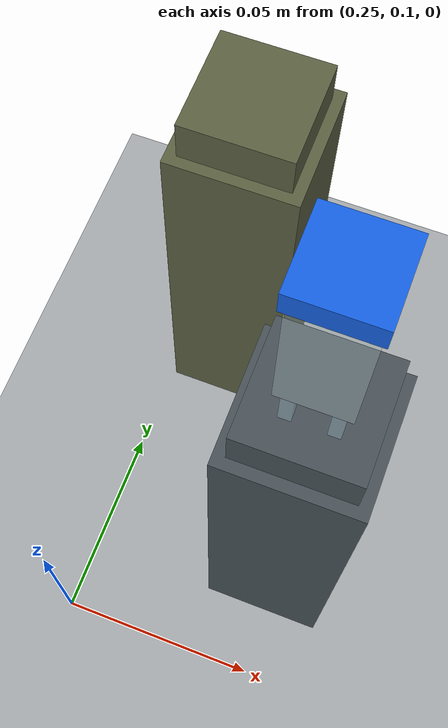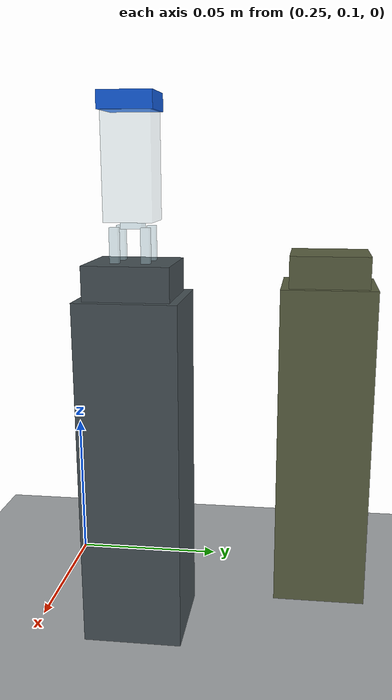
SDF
<?xml version="1.0"?>
<sdf version="1.9">
  <world name="atom_grasp">
    <gravity>0 0 -9.81</gravity>
    <physics name="1ms" type="ignored">
      <max_step_size>0.001</max_step_size>
      <real_time_factor>1.0</real_time_factor>
    </physics>
    <plugin filename="gz-sim-physics-system" name="gz::sim::systems::Physics"/>
    <plugin filename="gz-sim-user-commands-system" name="gz::sim::systems::UserCommands"/>
    <plugin filename="gz-sim-scene-broadcaster-system" name="gz::sim::systems::SceneBroadcaster"/>
    <plugin filename="gz-sim-contact-system" name="gz::sim::systems::Contact"/>

    <light type="directional" name="sun">
      <cast_shadows>true</cast_shadows>
      <pose>0 0 10 0 0 0</pose>
      <diffuse>0.8 0.8 0.8 1</diffuse>
      <specular>0.2 0.2 0.2 1</specular>
      <direction>-0.5 0.1 -0.9</direction>
    </light>

    <model name="ground_plane">
      <static>true</static>
      <link name="link">
        <collision name="collision">
          <geometry><plane><normal>0 0 1</normal><size>4 4</size></plane></geometry>
        </collision>
        <visual name="visual">
          <geometry><plane><normal>0 0 1</normal><size>4 4</size></plane></geometry>
          <material><ambient>0.55 0.57 0.58 1</ambient><diffuse>0.65 0.67 0.68 1</diffuse></material>
        </visual>
      </link>
    </model>

    <!-- A scenario fixture, not a model of either laboratory instrument. -->
    <model name="cuvette_support">
      <static>true</static>
      <pose>0.2982 0.13235 0 0 0 0</pose>
      <link name="support">
        <collision name="pedestal_collision">
          <pose>0 0 0.0525 0 0 0</pose>
          <geometry><box><size>0.030 0.030 0.105</size></box></geometry>
          <surface><friction><ode><mu>0.4</mu><mu2>0.4</mu2></ode></friction></surface>
        </collision>
        <collision name="tray_collision">
          <pose>0 0 0.110 0 0 0</pose>
          <geometry><box><size>0.025 0.025 0.010</size></box></geometry>
          <surface><friction><ode><mu>0.4</mu><mu2>0.4</mu2></ode></friction></surface>
        </collision>
        <visual name="pedestal_visual">
          <pose>0 0 0.0525 0 0 0</pose>
          <geometry><box><size>0.030 0.030 0.105</size></box></geometry>
          <material><ambient>0.18 0.22 0.24 1</ambient><diffuse>0.28 0.32 0.34 1</diffuse></material>
        </visual>
        <visual name="tray_visual">
          <pose>0 0 0.110 0 0 0</pose>
          <geometry><box><size>0.025 0.025 0.010</size></box></geometry>
          <material><ambient>0.18 0.22 0.24 1</ambient><diffuse>0.28 0.32 0.34 1</diffuse></material>
        </visual>
      </link>
    </model>

    <!-- Target fixture for the 0.2 rad shoulder-pan transfer test. -->
    <model name="cuvette_target_support">
      <static>true</static>
      <pose>0.2660 0.1890 0 0 0 0</pose>
      <link name="support">
        <collision name="pedestal_collision">
          <pose>0 0 0.0525 0 0 0</pose>
          <geometry><box><size>0.030 0.030 0.105</size></box></geometry>
        </collision>
        <collision name="tray_collision">
          <pose>0 0 0.110 0 0 0</pose>
          <geometry><box><size>0.025 0.025 0.010</size></box></geometry>
        </collision>
        <visual name="pedestal_visual">
          <pose>0 0 0.0525 0 0 0</pose>
          <geometry><box><size>0.030 0.030 0.105</size></box></geometry>
          <material><ambient>0.22 0.24 0.18 1</ambient><diffuse>0.36 0.38 0.26 1</diffuse></material>
        </visual>
        <visual name="tray_visual">
          <pose>0 0 0.110 0 0 0</pose>
          <geometry><box><size>0.025 0.025 0.010</size></box></geometry>
          <material><ambient>0.22 0.24 0.18 1</ambient><diffuse>0.36 0.38 0.26 1</diffuse></material>
        </visual>
      </link>
    </model>

    <model name="cuvette">
      <pose>0.2982 0.13235 0.1375 0 0 0</pose>
      <link name="body">
        <!-- 10 g is provisional; no received source gives a measured filled mass. -->
        <inertial>
          <mass>0.010</mass>
          <inertia>
            <ixx>0.0000018508</ixx><iyy>0.0000018508</iyy><izz>0.0000003267</izz>
            <ixy>0</ixy><ixz>0</ixz><iyz>0</iyz>
          </inertia>
        </inertial>
        <collision name="collision">
          <geometry><box><size>0.014 0.014 0.045</size></box></geometry>
          <surface>
            <friction>
              <ode><mu>0.88</mu><mu2>0.88</mu2></ode>
            </friction>
          </surface>
        </collision>
        <visual name="clear_body_visual">
          <pose>0 0 0.004 0 0 0</pose>
          <geometry><box><size>0.014 0.014 0.030</size></box></geometry>
          <material>
            <ambient>0.82 0.92 0.95 0.35</ambient>
            <diffuse>0.82 0.92 0.95 0.35</diffuse>
          </material>
          <transparency>0.65</transparency>
        </visual>
        <visual name="cap_visual">
          <pose>0 0 0.0215 0 0 0</pose>
          <geometry><box><size>0.0155 0.0155 0.005</size></box></geometry>
          <material><ambient>0.05 0.28 0.75 1</ambient><diffuse>0.08 0.38 0.90 1</diffuse></material>
        </visual>
        <visual name="sample_chamber_visual">
          <pose>0 0 -0.004 0 0 0</pose>
          <geometry><box><size>0.006 0.006 0.018</size></box></geometry>
          <material><ambient>0.70 0.86 0.92 0.45</ambient><diffuse>0.70 0.86 0.92 0.45</diffuse></material>
          <transparency>0.55</transparency>
        </visual>
        <visual name="sample_visual">
          <pose>0 0 -0.007 0 0 0</pose>
          <geometry><box><size>0.005 0.005 0.010</size></box></geometry>
          <material><ambient>0.08 0.48 0.72 0.8</ambient><diffuse>0.08 0.48 0.72 0.8</diffuse></material>
          <transparency>0.2</transparency>
        </visual>
        <visual name="foot_front_left">
          <pose>0.0045 0.0045 -0.0175 0 0 0</pose>
          <geometry><box><size>0.0025 0.0025 0.010</size></box></geometry>
          <material><ambient>0.72 0.86 0.90 0.45</ambient><diffuse>0.72 0.86 0.90 0.45</diffuse></material>
          <transparency>0.55</transparency>
        </visual>
        <visual name="foot_front_right">
          <pose>0.0045 -0.0045 -0.0175 0 0 0</pose>
          <geometry><box><size>0.0025 0.0025 0.010</size></box></geometry>
          <material><ambient>0.72 0.86 0.90 0.45</ambient><diffuse>0.72 0.86 0.90 0.45</diffuse></material>
          <transparency>0.55</transparency>
        </visual>
        <visual name="foot_back_left">
          <pose>-0.0045 0.0045 -0.0175 0 0 0</pose>
          <geometry><box><size>0.0025 0.0025 0.010</size></box></geometry>
          <material><ambient>0.72 0.86 0.90 0.45</ambient><diffuse>0.72 0.86 0.90 0.45</diffuse></material>
          <transparency>0.55</transparency>
        </visual>
        <visual name="foot_back_right">
          <pose>-0.0045 -0.0045 -0.0175 0 0 0</pose>
          <geometry><box><size>0.0025 0.0025 0.010</size></box></geometry>
          <material><ambient>0.72 0.86 0.90 0.45</ambient><diffuse>0.72 0.86 0.90 0.45</diffuse></material>
          <transparency>0.55</transparency>
        </visual>
      </link>
      <plugin filename="gz-sim-pose-publisher-system" name="gz::sim::systems::PosePublisher">
        <publish_model_pose>true</publish_model_pose>
        <publish_link_pose>false</publish_link_pose>
        <publish_collision_pose>false</publish_collision_pose>
        <publish_visual_pose>false</publish_visual_pose>
        <use_pose_vector_msg>true</use_pose_vector_msg>
        <update_frequency>100</update_frequency>
      </plugin>
    </model>
  </world>
</sdf>
